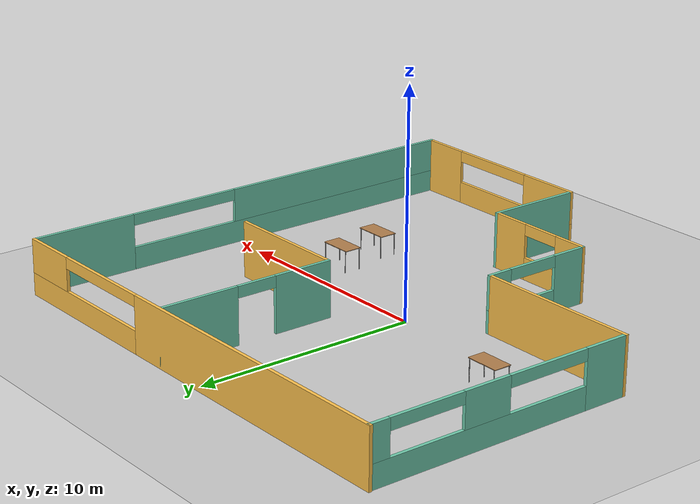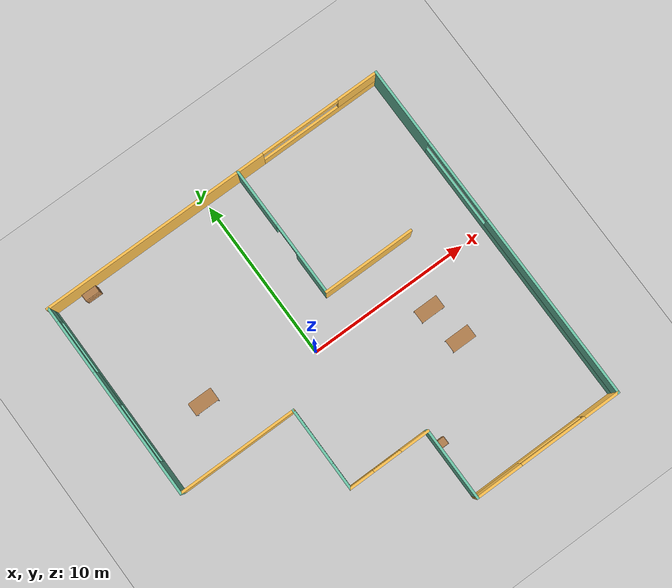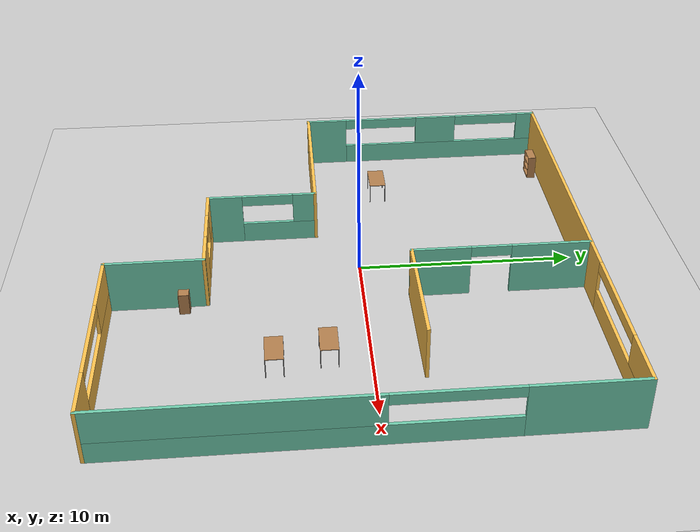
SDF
<sdf version="1.7">
 <world name="default">
  <plugin name="hello" filename="libhello.so"/>
  <light name="sun" type="directional">
   <pose>0 0 10 0 -0 0</pose>
   <diffuse>0.8 0.8 0.8 1</diffuse>
   <specular>0.2 0.2 0.2 1</specular>
   <attenuation>
    <range>1000</range>
    <constant>0.9</constant>
    <linear>0.01</linear>
    <quadratic>0.001</quadratic>
   </attenuation>
   <direction>-0.5 0.1 -0.9</direction>
   <spot><inner_angle>0</inner_angle><outer_angle>0</outer_angle><falloff>0</falloff></spot>
  </light>
  <model name="ground_plane">
   <static>1</static>
   <link name="link">
    <collision name="collision">
     <geometry><plane><normal>0 0 1</normal><size>100 100</size></plane></geometry>
     <surface>
      <contact><collide_bitmask>65535</collide_bitmask></contact>
      <friction><ode><mu>100</mu><mu2>50</mu2></ode></friction>
     </surface>
    </collision>
    <visual name="visual">
     <cast_shadows>0</cast_shadows>
     <geometry><plane><normal>0 0 1</normal><size>100 100</size></plane></geometry>
     <material>
      <script><uri>file://media/materials/scripts/gazebo.material</uri><name>Gazebo/Grey</name></script>
     </material>
    </visual>
   </link>
  </model>
  <gravity>0 0 -9.8</gravity>
  <magnetic_field>6e-06 2.3e-05 -4.2e-05</magnetic_field>
  <atmosphere type="adiabatic"/>
  <physics type="ode">
   <max_step_size>0.001</max_step_size>
   <real_time_factor>1</real_time_factor>
   <real_time_update_rate>1000</real_time_update_rate>
  </physics>
  <scene><ambient>0.4 0.4 0.4 1</ambient><background>0.7 0.7 0.7 1</background><shadows>1</shadows></scene>
  <spherical_coordinates>
   <surface_model>EARTH_WGS84</surface_model>
   <latitude_deg>0</latitude_deg>
   <longitude_deg>0</longitude_deg>
   <elevation>0</elevation>
   <heading_deg>0</heading_deg>
  </spherical_coordinates>
  <model name="ground_floor">
   <pose>0.672639 -0.5511 0 0 -0 0</pose>
   <link name="Wall_0">
    <pose>-1e-06 10.8 0 0 -0 0</pose>
    <visual name="Wall_0_Visual_0">
     <pose>-3.85063 0 1.25 0 -0 0</pose>
     <geometry><box><size>14.2987 0.15 2.5</size></box></geometry>
     <material>
      <script><uri>file://media/materials/scripts/gazebo.material</uri><name>Gazebo/Grey</name></script>
      <ambient>1 0.764706 0.305882 1</ambient>
     </material>
     <meta><layer>0</layer></meta>
    </visual>
    <collision name="Wall_0_Collision_0">
     <geometry><box><size>14.2987 0.15 2.5</size></box></geometry>
     <pose>-3.85063 0 1.25 0 -0 0</pose>
    </collision>
    <visual name="Wall_0_Visual_1">
     <pose>7.14937 0 0.5 0 -0 0</pose>
     <geometry><box><size>7.70126 0.15 1</size></box></geometry>
     <material>
      <script><uri>file://media/materials/scripts/gazebo.material</uri><name>Gazebo/Grey</name></script>
      <ambient>1 0.764706 0.305882 1</ambient>
     </material>
     <meta><layer>0</layer></meta>
    </visual>
    <collision name="Wall_0_Collision_1">
     <geometry><box><size>7.70126 0.15 1</size></box></geometry>
     <pose>7.14937 0 0.5 0 -0 0</pose>
    </collision>
    <visual name="Wall_0_Visual_2">
     <pose>9.66137 0 1.75 0 -0 0</pose>
     <geometry><box><size>2.67726 0.15 1.5</size></box></geometry>
     <material>
      <script><uri>file://media/materials/scripts/gazebo.material</uri><name>Gazebo/Grey</name></script>
      <ambient>1 0.764706 0.305882 1</ambient>
     </material>
     <meta><layer>0</layer></meta>
    </visual>
    <collision name="Wall_0_Collision_2">
     <geometry><box><size>2.67726 0.15 1.5</size></box></geometry>
     <pose>9.66137 0 1.75 0 -0 0</pose>
    </collision>
    <visual name="Wall_0_Visual_3">
     <pose>5.81074 0 2.25 0 -0 0</pose>
     <geometry><box><size>5.024 0.15 0.5</size></box></geometry>
     <material>
      <script><uri>file://media/materials/scripts/gazebo.material</uri><name>Gazebo/Grey</name></script>
      <ambient>1 0.764706 0.305882 1</ambient>
     </material>
     <meta><layer>0</layer></meta>
    </visual>
    <collision name="Wall_0_Collision_3">
     <geometry><box><size>5.024 0.15 0.5</size></box></geometry>
     <pose>5.81074 0 2.25 0 -0 0</pose>
    </collision>
   </link>
   <link name="Wall_1">
    <pose>10.925 0 0 0 0 -1.5708</pose>
    <visual name="Wall_1_Visual_0">
     <pose>-8.42693 0 1.25 0 -0 0</pose>
     <geometry><box><size>4.89614 0.15 2.5</size></box></geometry>
     <material>
      <script><uri>file://media/materials/scripts/gazebo.material</uri><name>Gazebo/Grey</name></script>
      <ambient>0.435294 0.796078 0.67451 1</ambient>
     </material>
     <meta><layer>0</layer></meta>
    </visual>
    <collision name="Wall_1_Collision_0">
     <geometry><box><size>4.89614 0.15 2.5</size></box></geometry>
     <pose>-8.42693 0 1.25 0 -0 0</pose>
    </collision>
    <visual name="Wall_1_Visual_1">
     <pose>2.44807 0 0.5 0 -0 0</pose>
     <geometry><box><size>16.8539 0.15 1</size></box></geometry>
     <material>
      <script><uri>file://media/materials/scripts/gazebo.material</uri><name>Gazebo/Grey</name></script>
      <ambient>0.435294 0.796078 0.67451 1</ambient>
     </material>
     <meta><layer>0</layer></meta>
    </visual>
    <collision name="Wall_1_Collision_1">
     <geometry><box><size>16.8539 0.15 1</size></box></geometry>
     <pose>2.44807 0 0.5 0 -0 0</pose>
    </collision>
    <visual name="Wall_1_Visual_2">
     <pose>5.08057 0 1.75 0 -0 0</pose>
     <geometry><box><size>11.5889 0.15 1.5</size></box></geometry>
     <material>
      <script><uri>file://media/materials/scripts/gazebo.material</uri><name>Gazebo/Grey</name></script>
      <ambient>0.435294 0.796078 0.67451 1</ambient>
     </material>
     <meta><layer>0</layer></meta>
    </visual>
    <collision name="Wall_1_Collision_2">
     <geometry><box><size>11.5889 0.15 1.5</size></box></geometry>
     <pose>5.08057 0 1.75 0 -0 0</pose>
    </collision>
    <visual name="Wall_1_Visual_3">
     <pose>-3.34636 0 2.25 0 -0 0</pose>
     <geometry><box><size>5.265 0.15 0.5</size></box></geometry>
     <material>
      <script><uri>file://media/materials/scripts/gazebo.material</uri><name>Gazebo/Grey</name></script>
      <ambient>0.435294 0.796078 0.67451 1</ambient>
     </material>
     <meta><layer>0</layer></meta>
    </visual>
    <collision name="Wall_1_Collision_3">
     <geometry><box><size>5.265 0.15 0.5</size></box></geometry>
     <pose>-3.34636 0 2.25 0 -0 0</pose>
    </collision>
   </link>
   <link name="Wall_10">
    <collision name="Wall_10_Collision">
     <geometry><box><size>5.75 0.15 2.5</size></box></geometry>
     <pose>0 0 1.25 0 -0 0</pose>
    </collision>
    <visual name="Wall_10_Visual">
     <pose>0 0 1.25 0 -0 0</pose>
     <geometry><box><size>5.75 0.15 2.5</size></box></geometry>
     <material>
      <script><uri>file://media/materials/scripts/gazebo.material</uri><name>Gazebo/Grey</name></script>
      <ambient>1 0.764706 0.305882 1</ambient>
     </material>
     <meta><layer>0</layer></meta>
    </visual>
    <pose>4.43646 2.7 0 0 -0 0</pose>
   </link>
   <link name="Wall_2">
    <pose>6.25 -10.8 0 0 -0 3.14159</pose>
    <visual name="Wall_2_Visual_0">
     <pose>-3.60608 0 1.25 0 -0 0</pose>
     <geometry><box><size>2.28785 0.15 2.5</size></box></geometry>
     <material>
      <script><uri>file://media/materials/scripts/gazebo.material</uri><name>Gazebo/Grey</name></script>
      <ambient>1 0.764706 0.305882 1</ambient>
     </material>
     <meta><layer>0</layer></meta>
    </visual>
    <collision name="Wall_2_Collision_0">
     <geometry><box><size>2.28785 0.15 2.5</size></box></geometry>
     <pose>-3.60608 0 1.25 0 -0 0</pose>
    </collision>
    <visual name="Wall_2_Visual_1">
     <pose>1.14393 0 0.5 0 -0 0</pose>
     <geometry><box><size>7.21215 0.15 1</size></box></geometry>
     <material>
      <script><uri>file://media/materials/scripts/gazebo.material</uri><name>Gazebo/Grey</name></script>
      <ambient>1 0.764706 0.305882 1</ambient>
     </material>
     <meta><layer>0</layer></meta>
    </visual>
    <collision name="Wall_2_Collision_1">
     <geometry><box><size>7.21215 0.15 1</size></box></geometry>
     <pose>1.14393 0 0.5 0 -0 0</pose>
    </collision>
    <visual name="Wall_2_Visual_2">
     <pose>3.24993 0 1.75 0 -0 0</pose>
     <geometry><box><size>3.00015 0.15 1.5</size></box></geometry>
     <material>
      <script><uri>file://media/materials/scripts/gazebo.material</uri><name>Gazebo/Grey</name></script>
      <ambient>1 0.764706 0.305882 1</ambient>
     </material>
     <meta><layer>0</layer></meta>
    </visual>
    <collision name="Wall_2_Collision_2">
     <geometry><box><size>3.00015 0.15 1.5</size></box></geometry>
     <pose>3.24993 0 1.75 0 -0 0</pose>
    </collision>
    <visual name="Wall_2_Visual_3">
     <pose>-0.35615 0 2.25 0 -0 0</pose>
     <geometry><box><size>4.212 0.15 0.5</size></box></geometry>
     <material>
      <script><uri>file://media/materials/scripts/gazebo.material</uri><name>Gazebo/Grey</name></script>
      <ambient>1 0.764706 0.305882 1</ambient>
     </material>
     <meta><layer>0</layer></meta>
    </visual>
    <collision name="Wall_2_Collision_3">
     <geometry><box><size>4.212 0.15 0.5</size></box></geometry>
     <pose>-0.35615 0 2.25 0 -0 0</pose>
    </collision>
   </link>
   <link name="Wall_3">
    <collision name="Wall_3_Collision">
     <geometry><box><size>4.5 0.15 2.5</size></box></geometry>
     <pose>0 0 1.25 0 -0 0</pose>
    </collision>
    <visual name="Wall_3_Visual">
     <pose>0 0 1.25 0 -0 0</pose>
     <geometry><box><size>4.5 0.15 2.5</size></box></geometry>
     <material>
      <script><uri>file://media/materials/scripts/gazebo.material</uri><name>Gazebo/Grey</name></script>
      <ambient>0.435294 0.796078 0.67451 1</ambient>
     </material>
     <meta><layer>0</layer></meta>
    </visual>
    <pose>1.575 -8.625 0 0 -0 1.5708</pose>
   </link>
   <link name="Wall_4">
    <pose>-0.975001 -6.45 0 0 -0 3.14159</pose>
    <visual name="Wall_4_Visual_0">
     <pose>-1.69584 0 1.25 0 -0 0</pose>
     <geometry><box><size>1.85833 0.15 2.5</size></box></geometry>
     <material>
      <script><uri>file://media/materials/scripts/gazebo.material</uri><name>Gazebo/Grey</name></script>
      <ambient>1 0.764706 0.305882 1</ambient>
     </material>
     <meta><layer>0</layer></meta>
    </visual>
    <collision name="Wall_4_Collision_0">
     <geometry><box><size>1.85833 0.15 2.5</size></box></geometry>
     <pose>-1.69584 0 1.25 0 -0 0</pose>
    </collision>
    <visual name="Wall_4_Visual_1">
     <pose>0.929163 0 0.5 0 -0 0</pose>
     <geometry><box><size>3.39167 0.15 1</size></box></geometry>
     <material>
      <script><uri>file://media/materials/scripts/gazebo.material</uri><name>Gazebo/Grey</name></script>
      <ambient>1 0.764706 0.305882 1</ambient>
     </material>
     <meta><layer>0</layer></meta>
    </visual>
    <collision name="Wall_4_Collision_1">
     <geometry><box><size>3.39167 0.15 1</size></box></geometry>
     <pose>0.929163 0 0.5 0 -0 0</pose>
    </collision>
    <visual name="Wall_4_Visual_2">
     <pose>1.82916 0 1.75 0 -0 0</pose>
     <geometry><box><size>1.59167 0.15 1.5</size></box></geometry>
     <material>
      <script><uri>file://media/materials/scripts/gazebo.material</uri><name>Gazebo/Grey</name></script>
      <ambient>1 0.764706 0.305882 1</ambient>
     </material>
     <meta><layer>0</layer></meta>
    </visual>
    <collision name="Wall_4_Collision_2">
     <geometry><box><size>1.59167 0.15 1.5</size></box></geometry>
     <pose>1.82916 0 1.75 0 -0 0</pose>
    </collision>
    <visual name="Wall_4_Visual_3">
     <pose>0.133326 0 2.25 0 -0 0</pose>
     <geometry><box><size>1.8 0.15 0.5</size></box></geometry>
     <material>
      <script><uri>file://media/materials/scripts/gazebo.material</uri><name>Gazebo/Grey</name></script>
      <ambient>1 0.764706 0.305882 1</ambient>
     </material>
     <meta><layer>0</layer></meta>
    </visual>
    <collision name="Wall_4_Collision_3">
     <geometry><box><size>1.8 0.15 0.5</size></box></geometry>
     <pose>0.133326 0 2.25 0 -0 0</pose>
    </collision>
   </link>
   <link name="Wall_5">
    <pose>-3.525 -3.9 0 0 -0 1.5708</pose>
    <visual name="Wall_5_Visual_0">
     <pose>-1.78127 0 1.25 0 -0 0</pose>
     <geometry><box><size>1.68745 0.15 2.5</size></box></geometry>
     <material>
      <script><uri>file://media/materials/scripts/gazebo.material</uri><name>Gazebo/Grey</name></script>
      <ambient>0.435294 0.796078 0.67451 1</ambient>
     </material>
     <meta><layer>0</layer></meta>
    </visual>
    <collision name="Wall_5_Collision_0">
     <geometry><box><size>1.68745 0.15 2.5</size></box></geometry>
     <pose>-1.78127 0 1.25 0 -0 0</pose>
    </collision>
    <visual name="Wall_5_Visual_1">
     <pose>0.843725 0 0.5 0 -0 0</pose>
     <geometry><box><size>3.56255 0.15 1</size></box></geometry>
     <material>
      <script><uri>file://media/materials/scripts/gazebo.material</uri><name>Gazebo/Grey</name></script>
      <ambient>0.435294 0.796078 0.67451 1</ambient>
     </material>
     <meta><layer>0</layer></meta>
    </visual>
    <collision name="Wall_5_Collision_1">
     <geometry><box><size>3.56255 0.15 1</size></box></geometry>
     <pose>0.843725 0 0.5 0 -0 0</pose>
    </collision>
    <visual name="Wall_5_Visual_2">
     <pose>2.04822 0 1.75 0 -0 0</pose>
     <geometry><box><size>1.15355 0.15 1.5</size></box></geometry>
     <material>
      <script><uri>file://media/materials/scripts/gazebo.material</uri><name>Gazebo/Grey</name></script>
      <ambient>0.435294 0.796078 0.67451 1</ambient>
     </material>
     <meta><layer>0</layer></meta>
    </visual>
    <collision name="Wall_5_Collision_2">
     <geometry><box><size>1.15355 0.15 1.5</size></box></geometry>
     <pose>2.04822 0 1.75 0 -0 0</pose>
    </collision>
    <visual name="Wall_5_Visual_3">
     <pose>0.266949 0 2.25 0 -0 0</pose>
     <geometry><box><size>2.409 0.15 0.5</size></box></geometry>
     <material>
      <script><uri>file://media/materials/scripts/gazebo.material</uri><name>Gazebo/Grey</name></script>
      <ambient>0.435294 0.796078 0.67451 1</ambient>
     </material>
     <meta><layer>0</layer></meta>
    </visual>
    <collision name="Wall_5_Collision_3">
     <geometry><box><size>2.409 0.15 0.5</size></box></geometry>
     <pose>0.266949 0 2.25 0 -0 0</pose>
    </collision>
   </link>
   <link name="Wall_6">
    <collision name="Wall_6_Collision">
     <geometry><box><size>7.5 0.15 2.5</size></box></geometry>
     <pose>0 0 1.25 0 -0 0</pose>
    </collision>
    <visual name="Wall_6_Visual">
     <pose>0 0 1.25 0 -0 0</pose>
     <geometry><box><size>7.5 0.15 2.5</size></box></geometry>
     <material>
      <script><uri>file://media/materials/scripts/gazebo.material</uri><name>Gazebo/Grey</name></script>
      <ambient>1 0.764706 0.305882 1</ambient>
     </material>
     <meta><layer>0</layer></meta>
    </visual>
    <pose>-7.2 -1.35 0 0 -0 3.14159</pose>
   </link>
   <link name="Wall_7">
    <pose>-10.875 4.7 0 0 -0 1.5708</pose>
    <visual name="Wall_7_Visual_0">
     <pose>-5.08309 0 1.25 0 -0 0</pose>
     <geometry><box><size>2.08381 0.15 2.5</size></box></geometry>
     <material>
      <script><uri>file://media/materials/scripts/gazebo.material</uri><name>Gazebo/Grey</name></script>
      <ambient>0.435294 0.796078 0.67451 1</ambient>
     </material>
     <meta><layer>0</layer></meta>
    </visual>
    <collision name="Wall_7_Collision_0">
     <geometry><box><size>2.08381 0.15 2.5</size></box></geometry>
     <pose>-5.08309 0 1.25 0 -0 0</pose>
    </collision>
    <visual name="Wall_7_Visual_1">
     <pose>1.04191 0 0.5 0 -0 0</pose>
     <geometry><box><size>10.1662 0.15 1</size></box></geometry>
     <material>
      <script><uri>file://media/materials/scripts/gazebo.material</uri><name>Gazebo/Grey</name></script>
      <ambient>0.435294 0.796078 0.67451 1</ambient>
     </material>
     <meta><layer>0</layer></meta>
    </visual>
    <collision name="Wall_7_Collision_1">
     <geometry><box><size>10.1662 0.15 1</size></box></geometry>
     <pose>1.04191 0 0.5 0 -0 0</pose>
    </collision>
    <visual name="Wall_7_Visual_2">
     <pose>0.7888 0 1.75 0 -0 0</pose>
     <geometry><box><size>2.13598 0.15 1.5</size></box></geometry>
     <material>
      <script><uri>file://media/materials/scripts/gazebo.material</uri><name>Gazebo/Grey</name></script>
      <ambient>0.435294 0.796078 0.67451 1</ambient>
     </material>
     <meta><layer>0</layer></meta>
    </visual>
    <collision name="Wall_7_Collision_2">
     <geometry><box><size>2.13598 0.15 1.5</size></box></geometry>
     <pose>0.7888 0 1.75 0 -0 0</pose>
    </collision>
    <visual name="Wall_7_Visual_3">
     <pose>5.67389 0 1.75 0 -0 0</pose>
     <geometry><box><size>0.902212 0.15 1.5</size></box></geometry>
     <material>
      <script><uri>file://media/materials/scripts/gazebo.material</uri><name>Gazebo/Grey</name></script>
      <ambient>0.435294 0.796078 0.67451 1</ambient>
     </material>
     <meta><layer>0</layer></meta>
    </visual>
    <collision name="Wall_7_Collision_3">
     <geometry><box><size>0.902212 0.15 1.5</size></box></geometry>
     <pose>5.67389 0 1.75 0 -0 0</pose>
    </collision>
    <visual name="Wall_7_Visual_4">
     <pose>-2.16019 0 2.25 0 -0 0</pose>
     <geometry><box><size>3.762 0.15 0.5</size></box></geometry>
     <material>
      <script><uri>file://media/materials/scripts/gazebo.material</uri><name>Gazebo/Grey</name></script>
      <ambient>0.435294 0.796078 0.67451 1</ambient>
     </material>
     <meta><layer>0</layer></meta>
    </visual>
    <collision name="Wall_7_Collision_4">
     <geometry><box><size>3.762 0.15 0.5</size></box></geometry>
     <pose>-2.16019 0 2.25 0 -0 0</pose>
    </collision>
    <visual name="Wall_7_Visual_5">
     <pose>3.53979 0 2.25 0 -0 0</pose>
     <geometry><box><size>3.366 0.15 0.5</size></box></geometry>
     <material>
      <script><uri>file://media/materials/scripts/gazebo.material</uri><name>Gazebo/Grey</name></script>
      <ambient>0.435294 0.796078 0.67451 1</ambient>
     </material>
     <meta><layer>0</layer></meta>
    </visual>
    <collision name="Wall_7_Collision_5">
     <geometry><box><size>3.366 0.15 0.5</size></box></geometry>
     <pose>3.53979 0 2.25 0 -0 0</pose>
    </collision>
   </link>
   <link name="Wall_9">
    <pose>1.63646 6.75 0 0 0 -1.5708</pose>
    <visual name="Wall_9_Visual_0">
     <pose>-2.28522 0 1.25 0 -0 0</pose>
     <geometry><box><size>3.67956 0.15 2.5</size></box></geometry>
     <material>
      <script><uri>file://media/materials/scripts/gazebo.material</uri><name>Gazebo/Grey</name></script>
      <ambient>0.435294 0.796078 0.67451 1</ambient>
     </material>
     <meta><layer>0</layer></meta>
    </visual>
    <collision name="Wall_9_Collision_0">
     <geometry><box><size>3.67956 0.15 2.5</size></box></geometry>
     <pose>-2.28522 0 1.25 0 -0 0</pose>
    </collision>
    <visual name="Wall_9_Visual_1">
     <pose>2.75228 0 1.25 0 -0 0</pose>
     <geometry><box><size>2.74544 0.15 2.5</size></box></geometry>
     <material>
      <script><uri>file://media/materials/scripts/gazebo.material</uri><name>Gazebo/Grey</name></script>
      <ambient>0.435294 0.796078 0.67451 1</ambient>
     </material>
     <meta><layer>0</layer></meta>
    </visual>
    <collision name="Wall_9_Collision_1">
     <geometry><box><size>2.74544 0.15 2.5</size></box></geometry>
     <pose>2.75228 0 1.25 0 -0 0</pose>
    </collision>
    <visual name="Wall_9_Visual_2">
     <pose>0.46706 0 2.25 0 -0 0</pose>
     <geometry><box><size>1.825 0.15 0.5</size></box></geometry>
     <material>
      <script><uri>file://media/materials/scripts/gazebo.material</uri><name>Gazebo/Grey</name></script>
      <ambient>0.435294 0.796078 0.67451 1</ambient>
     </material>
     <meta><layer>0</layer></meta>
    </visual>
    <collision name="Wall_9_Collision_2">
     <geometry><box><size>1.825 0.15 0.5</size></box></geometry>
     <pose>0.46706 0 2.25 0 -0 0</pose>
    </collision>
   </link>
   <static>1</static>
  </model>
  <model name="table">
   <static>1</static>
   <link name="link">
    <collision name="surface">
     <pose>0 0 1 0 -0 0</pose>
     <geometry><box><size>1.5 0.8 0.03</size></box></geometry>
     <surface><friction><ode><mu>0.6</mu><mu2>0.6</mu2></ode></friction></surface>
    </collision>
    <visual name="visual1">
     <pose>0 0 1 0 -0 0</pose>
     <geometry><box><size>1.5 0.8 0.03</size></box></geometry>
     <material>
      <script><uri>file://media/materials/scripts/gazebo.material</uri><name>Gazebo/Wood</name></script>
     </material>
    </visual>
    <collision name="front_left_leg">
     <pose>0.68 0.38 0.5 0 -0 0</pose>
     <geometry><cylinder><radius>0.02</radius><length>1</length></cylinder></geometry>
    </collision>
    <visual name="front_left_leg">
     <pose>0.68 0.38 0.5 0 -0 0</pose>
     <geometry><cylinder><radius>0.02</radius><length>1</length></cylinder></geometry>
     <material>
      <script><uri>file://media/materials/scripts/gazebo.material</uri><name>Gazebo/Grey</name></script>
     </material>
    </visual>
    <collision name="front_right_leg">
     <pose>0.68 -0.38 0.5 0 -0 0</pose>
     <geometry><cylinder><radius>0.02</radius><length>1</length></cylinder></geometry>
    </collision>
    <visual name="front_right_leg">
     <pose>0.68 -0.38 0.5 0 -0 0</pose>
     <geometry><cylinder><radius>0.02</radius><length>1</length></cylinder></geometry>
     <material>
      <script><uri>file://media/materials/scripts/gazebo.material</uri><name>Gazebo/Grey</name></script>
     </material>
    </visual>
    <collision name="back_right_leg">
     <pose>-0.68 -0.38 0.5 0 -0 0</pose>
     <geometry><cylinder><radius>0.02</radius><length>1</length></cylinder></geometry>
    </collision>
    <visual name="back_right_leg">
     <pose>-0.68 -0.38 0.5 0 -0 0</pose>
     <geometry><cylinder><radius>0.02</radius><length>1</length></cylinder></geometry>
     <material>
      <script><uri>file://media/materials/scripts/gazebo.material</uri><name>Gazebo/Grey</name></script>
     </material>
    </visual>
    <collision name="back_left_leg">
     <pose>-0.68 0.38 0.5 0 -0 0</pose>
     <geometry><cylinder><radius>0.02</radius><length>1</length></cylinder></geometry>
    </collision>
    <visual name="back_left_leg">
     <pose>-0.68 0.38 0.5 0 -0 0</pose>
     <geometry><cylinder><radius>0.02</radius><length>1</length></cylinder></geometry>
     <material>
      <script><uri>file://media/materials/scripts/gazebo.material</uri><name>Gazebo/Grey</name></script>
     </material>
    </visual>
   </link>
   <pose>6.33702 -1.79559 0 0 -0 0</pose>
  </model>
  <model name="table_0">
   <static>1</static>
   <link name="link">
    <collision name="surface">
     <pose>0 0 1 0 -0 0</pose>
     <geometry><box><size>1.5 0.8 0.03</size></box></geometry>
     <surface><friction><ode><mu>0.6</mu><mu2>0.6</mu2></ode></friction></surface>
    </collision>
    <visual name="visual1">
     <pose>0 0 1 0 -0 0</pose>
     <geometry><box><size>1.5 0.8 0.03</size></box></geometry>
     <material>
      <script><uri>file://media/materials/scripts/gazebo.material</uri><name>Gazebo/Wood</name></script>
     </material>
    </visual>
    <collision name="front_left_leg">
     <pose>0.68 0.38 0.5 0 -0 0</pose>
     <geometry><cylinder><radius>0.02</radius><length>1</length></cylinder></geometry>
    </collision>
    <visual name="front_left_leg">
     <pose>0.68 0.38 0.5 0 -0 0</pose>
     <geometry><cylinder><radius>0.02</radius><length>1</length></cylinder></geometry>
     <material>
      <script><uri>file://media/materials/scripts/gazebo.material</uri><name>Gazebo/Grey</name></script>
     </material>
    </visual>
    <collision name="front_right_leg">
     <pose>0.68 -0.38 0.5 0 -0 0</pose>
     <geometry><cylinder><radius>0.02</radius><length>1</length></cylinder></geometry>
    </collision>
    <visual name="front_right_leg">
     <pose>0.68 -0.38 0.5 0 -0 0</pose>
     <geometry><cylinder><radius>0.02</radius><length>1</length></cylinder></geometry>
     <material>
      <script><uri>file://media/materials/scripts/gazebo.material</uri><name>Gazebo/Grey</name></script>
     </material>
    </visual>
    <collision name="back_right_leg">
     <pose>-0.68 -0.38 0.5 0 -0 0</pose>
     <geometry><cylinder><radius>0.02</radius><length>1</length></cylinder></geometry>
    </collision>
    <visual name="back_right_leg">
     <pose>-0.68 -0.38 0.5 0 -0 0</pose>
     <geometry><cylinder><radius>0.02</radius><length>1</length></cylinder></geometry>
     <material>
      <script><uri>file://media/materials/scripts/gazebo.material</uri><name>Gazebo/Grey</name></script>
     </material>
    </visual>
    <collision name="back_left_leg">
     <pose>-0.68 0.38 0.5 0 -0 0</pose>
     <geometry><cylinder><radius>0.02</radius><length>1</length></cylinder></geometry>
    </collision>
    <visual name="back_left_leg">
     <pose>-0.68 0.38 0.5 0 -0 0</pose>
     <geometry><cylinder><radius>0.02</radius><length>1</length></cylinder></geometry>
     <material>
      <script><uri>file://media/materials/scripts/gazebo.material</uri><name>Gazebo/Grey</name></script>
     </material>
    </visual>
   </link>
   <pose>6.75452 -4.08995 0 0 -0 0</pose>
  </model>
  <model name="bookshelf">
   <static>1</static>
   <link name="link">
    <inertial><mass>1</mass></inertial>
    <collision name="back">
     <pose>0 0.005 0.6 0 -0 0</pose>
     <geometry><box><size>0.9 0.01 1.2</size></box></geometry>
    </collision>
    <visual name="visual1">
     <pose>0 0.005 0.6 0 -0 0</pose>
     <geometry><box><size>0.9 0.01 1.2</size></box></geometry>
     <material>
      <script><uri>file://media/materials/scripts/gazebo.material</uri><name>Gazebo/Wood</name></script>
     </material>
    </visual>
    <collision name="left_side">
     <pose>0.45 -0.195 0.6 0 -0 0</pose>
     <geometry><box><size>0.02 0.4 1.2</size></box></geometry>
    </collision>
    <visual name="visual2">
     <pose>0.45 -0.195 0.6 0 -0 0</pose>
     <geometry><box><size>0.02 0.4 1.2</size></box></geometry>
     <material>
      <script><uri>file://media/materials/scripts/gazebo.material</uri><name>Gazebo/Wood</name></script>
     </material>
    </visual>
    <collision name="right_side">
     <pose>-0.45 -0.195 0.6 0 -0 0</pose>
     <geometry><box><size>0.02 0.4 1.2</size></box></geometry>
    </collision>
    <visual name="visual3">
     <pose>-0.45 -0.195 0.6 0 -0 0</pose>
     <geometry><box><size>0.02 0.4 1.2</size></box></geometry>
     <material>
      <script><uri>file://media/materials/scripts/gazebo.material</uri><name>Gazebo/Wood</name></script>
     </material>
    </visual>
    <collision name="bottom">
     <pose>0 -0.195 0.03 0 -0 0</pose>
     <geometry><box><size>0.88 0.4 0.06</size></box></geometry>
    </collision>
    <visual name="visual4">
     <pose>0 -0.195 0.03 0 -0 0</pose>
     <geometry><box><size>0.88 0.4 0.06</size></box></geometry>
     <material>
      <script><uri>file://media/materials/scripts/gazebo.material</uri><name>Gazebo/Wood</name></script>
     </material>
    </visual>
    <collision name="top">
     <pose>0 -0.195 1.19 0 -0 0</pose>
     <geometry><box><size>0.88 0.4 0.02</size></box></geometry>
    </collision>
    <visual name="visual5">
     <pose>0 -0.195 1.19 0 -0 0</pose>
     <geometry><box><size>0.88 0.4 0.02</size></box></geometry>
     <material>
      <script><uri>file://media/materials/scripts/gazebo.material</uri><name>Gazebo/Wood</name></script>
     </material>
    </visual>
    <collision name="low_shelf">
     <pose>0 -0.195 0.43 0 -0 0</pose>
     <geometry><box><size>0.88 0.4 0.02</size></box></geometry>
    </collision>
    <visual name="visual6">
     <pose>0 -0.195 0.43 0 -0 0</pose>
     <geometry><box><size>0.88 0.4 0.02</size></box></geometry>
     <material>
      <script><uri>file://media/materials/scripts/gazebo.material</uri><name>Gazebo/Wood</name></script>
     </material>
    </visual>
    <collision name="high_shelf">
     <pose>0 -0.195 0.8 0 -0 0</pose>
     <geometry><box><size>0.88 0.4 0.02</size></box></geometry>
    </collision>
    <visual name="visual7">
     <pose>0 -0.195 0.8 0 -0 0</pose>
     <geometry><box><size>0.88 0.4 0.02</size></box></geometry>
     <material>
      <script><uri>file://media/materials/scripts/gazebo.material</uri><name>Gazebo/Wood</name></script>
     </material>
    </visual>
   </link>
   <pose>-8 10 0 0 -0 0</pose>
  </model>
  <model name="cabinet">
   <static>1</static>
   <link name="cabinet_bottom_plate">
    <inertial>
     <pose>0 0 -1 0 -0 0</pose>
     <inertia><ixx>2.05</ixx><ixy>0</ixy><ixz>0</ixz><iyy>2.05</iyy><iyz>0</iyz><izz>2.05</izz></inertia>
     <mass>25</mass>
    </inertial>
    <collision name="cabinet_bottom_plate_geom">
     <pose>0 0 0.01 0 -0 0</pose>
     <geometry><box><size>0.45 0.45 0.02</size></box></geometry>
    </collision>
    <visual name="cabinet_bottom_plate_geom_visual">
     <pose>0 0 0.01 0 -0 0</pose>
     <geometry><box><size>0.45 0.45 0.02</size></box></geometry>
     <material>
      <script><uri>file://media/materials/scripts/gazebo.material</uri><name>Gazebo/Wood</name></script>
     </material>
    </visual>
    <collision name="cabinet_bottom_plate_geom_cabinet_back_plate">
     <pose>0.235 0 0.51 0 -0 0</pose>
     <geometry><box><size>0.02 0.45 1.02</size></box></geometry>
    </collision>
    <visual name="cabinet_bottom_plate_geom_cabinet_back_plate_visual">
     <pose>0.235 0 0.51 0 -0 0</pose>
     <geometry><box><size>0.02 0.45 1.02</size></box></geometry>
     <material>
      <script><uri>file://media/materials/scripts/gazebo.material</uri><name>Gazebo/Wood</name></script>
     </material>
    </visual>
    <collision name="cabinet_bottom_plate_geom_cabinet_left_plate">
     <pose>0 0.235 0.51 0 -0 0</pose>
     <geometry><box><size>0.45 0.02 1.02</size></box></geometry>
    </collision>
    <visual name="cabinet_bottom_plate_geom_cabinet_left_plate_visual">
     <pose>0 0.235 0.51 0 -0 0</pose>
     <geometry><box><size>0.45 0.02 1.02</size></box></geometry>
     <material>
      <script><uri>file://media/materials/scripts/gazebo.material</uri><name>Gazebo/Wood</name></script>
     </material>
    </visual>
    <collision name="cabinet_bottom_plate_geom_cabinet_middle_plate">
     <pose>0 0 0.51 0 -0 0</pose>
     <geometry><box><size>0.45 0.45 0.02</size></box></geometry>
    </collision>
    <visual name="cabinet_bottom_plate_geom_cabinet_middle_plate_visual">
     <pose>0 0 0.51 0 -0 0</pose>
     <geometry><box><size>0.45 0.45 0.02</size></box></geometry>
     <material>
      <script><uri>file://media/materials/scripts/gazebo.material</uri><name>Gazebo/Wood</name></script>
     </material>
    </visual>
    <collision name="cabinet_bottom_plate_geom_cabinet_right_plate">
     <pose>0 -0.235 0.51 0 -0 0</pose>
     <geometry><box><size>0.45 0.02 1.02</size></box></geometry>
    </collision>
    <visual name="cabinet_bottom_plate_geom_cabinet_right_plate_visual">
     <pose>0 -0.235 0.51 0 -0 0</pose>
     <geometry><box><size>0.45 0.02 1.02</size></box></geometry>
     <material>
      <script><uri>file://media/materials/scripts/gazebo.material</uri><name>Gazebo/Wood</name></script>
     </material>
    </visual>
    <collision name="cabinet_bottom_plate_geom_cabinet_top_plate">
     <pose>0 0 1.01 0 -0 0</pose>
     <geometry><box><size>0.45 0.45 0.02</size></box></geometry>
    </collision>
    <visual name="cabinet_bottom_plate_geom_cabinet_top_plate_visual">
     <pose>0 0 1.01 0 -0 0</pose>
     <geometry><box><size>0.45 0.45 0.02</size></box></geometry>
     <material>
      <script><uri>file://media/materials/scripts/gazebo.material</uri><name>Gazebo/Wood</name></script>
     </material>
    </visual>
   </link>
   <pose>2.59958 -8 0 0 -0 0</pose>
  </model>
  <model name="table_1">
   <static>1</static>
   <link name="link">
    <collision name="surface">
     <pose>0 0 1 0 -0 0</pose>
     <geometry><box><size>1.5 0.8 0.03</size></box></geometry>
     <surface><friction><ode><mu>0.6</mu><mu2>0.6</mu2></ode></friction></surface>
    </collision>
    <visual name="visual1">
     <pose>0 0 1 0 -0 0</pose>
     <geometry><box><size>1.5 0.8 0.03</size></box></geometry>
     <material>
      <script><uri>file://media/materials/scripts/gazebo.material</uri><name>Gazebo/Wood</name></script>
     </material>
    </visual>
    <collision name="front_left_leg">
     <pose>0.68 0.38 0.5 0 -0 0</pose>
     <geometry><cylinder><radius>0.02</radius><length>1</length></cylinder></geometry>
    </collision>
    <visual name="front_left_leg">
     <pose>0.68 0.38 0.5 0 -0 0</pose>
     <geometry><cylinder><radius>0.02</radius><length>1</length></cylinder></geometry>
     <material>
      <script><uri>file://media/materials/scripts/gazebo.material</uri><name>Gazebo/Grey</name></script>
     </material>
    </visual>
    <collision name="front_right_leg">
     <pose>0.68 -0.38 0.5 0 -0 0</pose>
     <geometry><cylinder><radius>0.02</radius><length>1</length></cylinder></geometry>
    </collision>
    <visual name="front_right_leg">
     <pose>0.68 -0.38 0.5 0 -0 0</pose>
     <geometry><cylinder><radius>0.02</radius><length>1</length></cylinder></geometry>
     <material>
      <script><uri>file://media/materials/scripts/gazebo.material</uri><name>Gazebo/Grey</name></script>
     </material>
    </visual>
    <collision name="back_right_leg">
     <pose>-0.68 -0.38 0.5 0 -0 0</pose>
     <geometry><cylinder><radius>0.02</radius><length>1</length></cylinder></geometry>
    </collision>
    <visual name="back_right_leg">
     <pose>-0.68 -0.38 0.5 0 -0 0</pose>
     <geometry><cylinder><radius>0.02</radius><length>1</length></cylinder></geometry>
     <material>
      <script><uri>file://media/materials/scripts/gazebo.material</uri><name>Gazebo/Grey</name></script>
     </material>
    </visual>
    <collision name="back_left_leg">
     <pose>-0.68 0.38 0.5 0 -0 0</pose>
     <geometry><cylinder><radius>0.02</radius><length>1</length></cylinder></geometry>
    </collision>
    <visual name="back_left_leg">
     <pose>-0.68 0.38 0.5 0 -0 0</pose>
     <geometry><cylinder><radius>0.02</radius><length>1</length></cylinder></geometry>
     <material>
      <script><uri>file://media/materials/scripts/gazebo.material</uri><name>Gazebo/Grey</name></script>
     </material>
    </visual>
   </link>
   <pose>-6.50335 1.40512 0 0 -0 0</pose>
  </model>
 </world>
</sdf>
